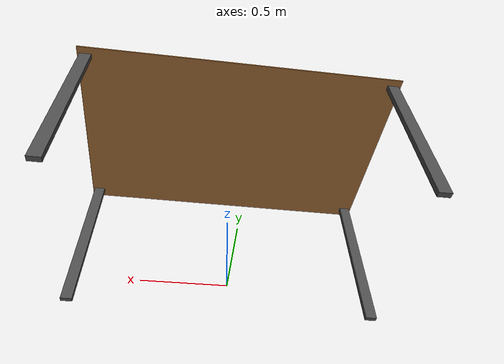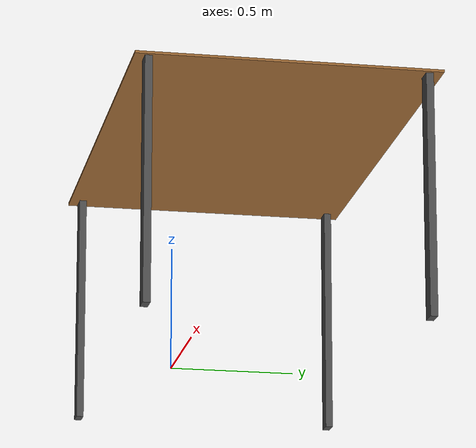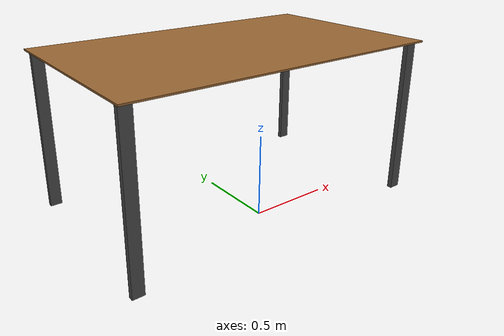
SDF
<?xml version="1.0" ?>
<sdf version="1.6">
  <model name="mesa">
    <static>true</static>
    <pose>0 0.3 0 0 0 0</pose>
    <link name="tablero">
      <pose>0 0 0.98 0 0 0</pose>
      <visual name="visual">
        <geometry>
          <box>
            <size>2.0 1.21 0.01</size>
          </box>
        </geometry>
        <material>
          <ambient>0.6 0.4 0.2 1</ambient>
          <diffuse>0.6 0.4 0.2 1</diffuse>
        </material>
      </visual>
      <collision name="collision">
        <geometry>
          <box>
            <size>2.0 1.21 0.01</size>
          </box>
        </geometry>
      </collision>
    </link>
    <!-- Pata 1 -->
    <link name="pata1">
      <pose>-0.95 -0.55 0.49 0 0 0</pose>
      <visual name="visual">
        <geometry>
          <box>
            <size>0.07 0.03 0.98</size>
          </box>
        </geometry>
        <material>
          <ambient>0.3 0.3 0.3 1</ambient>
        </material>
      </visual>
      <collision name="collision">
        <geometry>
          <box>
            <size>0.07 0.03 0.98</size>
          </box>
        </geometry>
      </collision>
    </link>
    <link name='pata2'>
    <pose>0.95 -0.55 0.49 0 0 0</pose>
    <visual name='visual'>
        <geometry>
        <box>
            <size>0.07 0.03 0.98</size>
        </box>
        </geometry>
        <material>
        <ambient>0.3 0.3 0.3 1</ambient>
        </material>
    </visual>
    <collision name='collision'>
        <geometry>
        <box>
            <size>0.07 0.03 0.98</size>
        </box>
        </geometry>
    </collision>
    </link>

    <link name='pata3'>
    <pose>-0.95 0.55 0.49 0 0 0</pose>
    <visual name='visual'>
        <geometry>
        <box>
            <size>0.07 0.03 0.98</size>
        </box>
        </geometry>
        <material>
        <ambient>0.3 0.3 0.3 1</ambient>
        </material>
    </visual>
    <collision name='collision'>
        <geometry>
        <box>
            <size>0.07 0.03 0.98</size>
        </box>
        </geometry>
    </collision>
    </link>

    <link name='pata4'>
    <pose>0.95 0.55 0.49 0 0 0</pose>
    <visual name='visual'>
        <geometry>
        <box>
            <size>0.07 0.03 0.98</size>
        </box>
        </geometry>
        <material>
        <ambient>0.3 0.3 0.3 1</ambient>
        </material>
    </visual>
    <collision name='collision'>
        <geometry>
        <box>
            <size>0.07 0.03 0.98</size>
        </box>
        </geometry>
    </collision>
    </link>
  </model>
</sdf>
